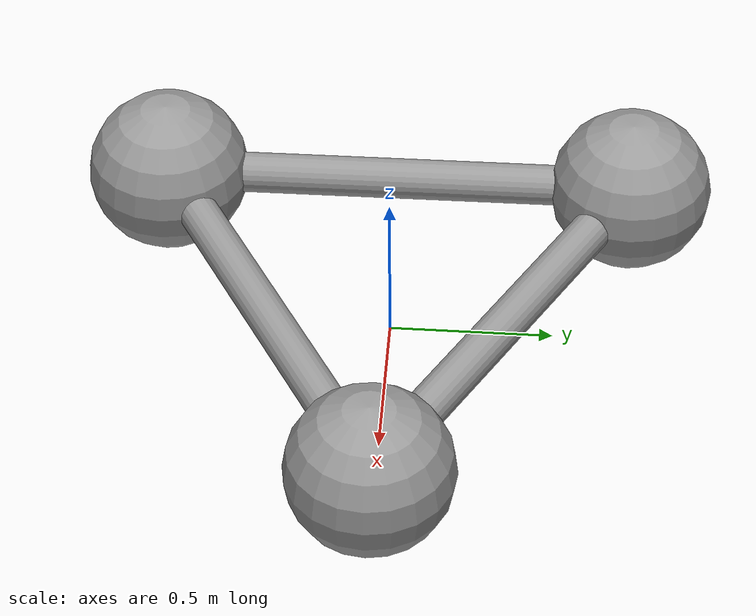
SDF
<?xml version="1.0" ?>

<sdf version="1.5">
  <model name="triball_fixed">
    <allow_auto_disable>false</allow_auto_disable>
    <link name="chassis">
      <pose>0 0 0.25  0 0 0</pose>
      <inertial>
        <pose>0.0 0.0 0 0 0 0</pose>
        <mass>3.9555</mass>
        <inertia>
          <ixx>1.4723250000000003</ixx>
          <iyy>1.4723249999999994</iyy>
          <izz>2.8457625</izz>
          <ixy>0.0</ixy>
          <ixz>0.0</ixz>
          <iyz>0.0</iyz>
        </inertia>
      </inertial>
      <sensor name="imu" type="imu">
        <always_on>true</always_on>
      </sensor>

      <collision name="collision_a_to_b">
        <pose>0.20833333333333331 0.36084391824351614 0.0  -1.5707962969925737 -1.0471975511965974 1.047197525387029</pose>
        <geometry>
          <cylinder>
            <radius>0.0625</radius>
            <length>1.4433756729740645</length>
          </cylinder>
        </geometry>
        <surface>
          <friction>
            <ode>
              <mu>0.9</mu>
              <mu2>0.9</mu2>
            </ode>
          </friction>
        </surface>
      </collision>
      <visual name="visual_a_to_b">
        <pose>0.20833333333333331 0.36084391824351614 0.0  -1.5707962969925737 -1.0471975511965974 1.047197525387029</pose>
        <geometry>
          <cylinder>
            <radius>0.0625</radius>
            <length>1.4433756729740645</length>
          </cylinder>
        </geometry>
        <material>
          <script>
            <uri>file://media/materials/scripts/gazebo.material</uri>
            <name>Gazebo/Grey</name>
          </script>
        </material>
      </visual>

      <collision name="collision_a_to_c">
        <pose>0.20833333333333331 -0.36084391824351614 0.0  1.5707962969925737 -1.0471975511965974 -1.047197525387029</pose>
        <geometry>
          <cylinder>
            <radius>0.0625</radius>
            <length>1.4433756729740645</length>
          </cylinder>
        </geometry>
        <surface>
          <friction>
            <ode>
              <mu>0.9</mu>
              <mu2>0.9</mu2>
            </ode>
          </friction>
        </surface>
      </collision>
      <visual name="visual_a_to_c">
        <pose>0.20833333333333331 -0.36084391824351614 0.0  1.5707962969925737 -1.0471975511965974 -1.047197525387029</pose>
        <geometry>
          <cylinder>
            <radius>0.0625</radius>
            <length>1.4433756729740645</length>
          </cylinder>
        </geometry>
        <material>
          <script>
            <uri>file://media/materials/scripts/gazebo.material</uri>
            <name>Gazebo/Grey</name>
          </script>
        </material>
      </visual>

      <collision name="collision_b_to_c">
        <pose>-0.41666666666666663 0.0 0.0  1.5707963267948963 -0.0 0.0</pose>
        <geometry>
          <cylinder>
            <radius>0.0625</radius>
            <length>1.4433756729740645</length>
          </cylinder>
        </geometry>
        <surface>
          <friction>
            <ode>
              <mu>0.9</mu>
              <mu2>0.9</mu2>
            </ode>
          </friction>
        </surface>
      </collision>
      <visual name="visual_b_to_c">
        <pose>-0.41666666666666663 0.0 0.0  1.5707963267948963 -0.0 0.0</pose>
        <geometry>
          <cylinder>
            <radius>0.0625</radius>
            <length>1.4433756729740645</length>
          </cylinder>
        </geometry>
        <material>
          <script>
            <uri>file://media/materials/scripts/gazebo.material</uri>
            <name>Gazebo/Grey</name>
          </script>
        </material>
      </visual>

    </link>

    <link name="link_a">
      <pose>0.8333333333333333 0 0.25  0 0 0</pose>
      <inertial>
        <mass>1.3185</mass>
        <inertia>
          <ixx>0.0329625</ixx>
          <iyy>0.0329625</iyy>
          <izz>0.0329625</izz>
          <ixy>0</ixy>
          <ixz>0</ixz>
          <iyz>0</iyz>
        </inertia>
      </inertial>
      <collision name="collision">
        <geometry>
          <sphere>
            <radius>0.25</radius>
          </sphere>
        </geometry>
        <surface>
          <friction>
            <ode>
              <mu>0.9</mu>
              <mu2>0.9</mu2>
              <fdir1>1 0 0</fdir1>
            </ode>
          </friction>
        </surface>
      </collision>
      <visual name="visual">
        <geometry>
          <sphere>
            <radius>0.25</radius>
          </sphere>
        </geometry>
        <material>
          <script>
            <uri>file://media/materials/scripts/gazebo.material</uri>
            <name>Gazebo/Grey</name>
          </script>
        </material>
      </visual>
    </link>
    <joint name="joint_a" type="fixed">
      <parent>chassis</parent>
      <child>link_a</child>
    </joint>

    <link name="link_b">
      <pose>-0.41666666666666663 0.7216878364870323 0.25  0 0 0</pose>
      <inertial>
        <mass>1.3185</mass>
        <inertia>
          <ixx>0.0329625</ixx>
          <iyy>0.0329625</iyy>
          <izz>0.0329625</izz>
          <ixy>0</ixy>
          <ixz>0</ixz>
          <iyz>0</iyz>
        </inertia>
      </inertial>
      <collision name="collision">
        <geometry>
          <sphere>
            <radius>0.25</radius>
          </sphere>
        </geometry>
        <surface>
          <friction>
            <ode>
              <mu>0.9</mu>
              <mu2>0.9</mu2>
              <fdir1>1 0 0</fdir1>
            </ode>
          </friction>
        </surface>
      </collision>
      <visual name="visual">
        <geometry>
          <sphere>
            <radius>0.25</radius>
          </sphere>
        </geometry>
        <material>
          <script>
            <uri>file://media/materials/scripts/gazebo.material</uri>
            <name>Gazebo/Grey</name>
          </script>
        </material>
      </visual>
    </link>
    <joint name="joint_b" type="fixed">
      <parent>chassis</parent>
      <child>link_b</child>
    </joint>

    <link name="link_c">
      <pose>-0.41666666666666663 -0.7216878364870323 0.25  0 0 0</pose>
      <inertial>
        <mass>1.3185</mass>
        <inertia>
          <ixx>0.0329625</ixx>
          <iyy>0.0329625</iyy>
          <izz>0.0329625</izz>
          <ixy>0</ixy>
          <ixz>0</ixz>
          <iyz>0</iyz>
        </inertia>
      </inertial>
      <collision name="collision">
        <geometry>
          <sphere>
            <radius>0.25</radius>
          </sphere>
        </geometry>
        <surface>
          <friction>
            <ode>
              <mu>0.9</mu>
              <mu2>0.9</mu2>
              <fdir1>1 0 0</fdir1>
            </ode>
          </friction>
        </surface>
      </collision>
      <visual name="visual">
        <geometry>
          <sphere>
            <radius>0.25</radius>
          </sphere>
        </geometry>
        <material>
          <script>
            <uri>file://media/materials/scripts/gazebo.material</uri>
            <name>Gazebo/Grey</name>
          </script>
        </material>
      </visual>
    </link>
    <joint name="joint_c" type="fixed">
      <parent>chassis</parent>
      <child>link_c</child>
    </joint>

  </model>
</sdf>
